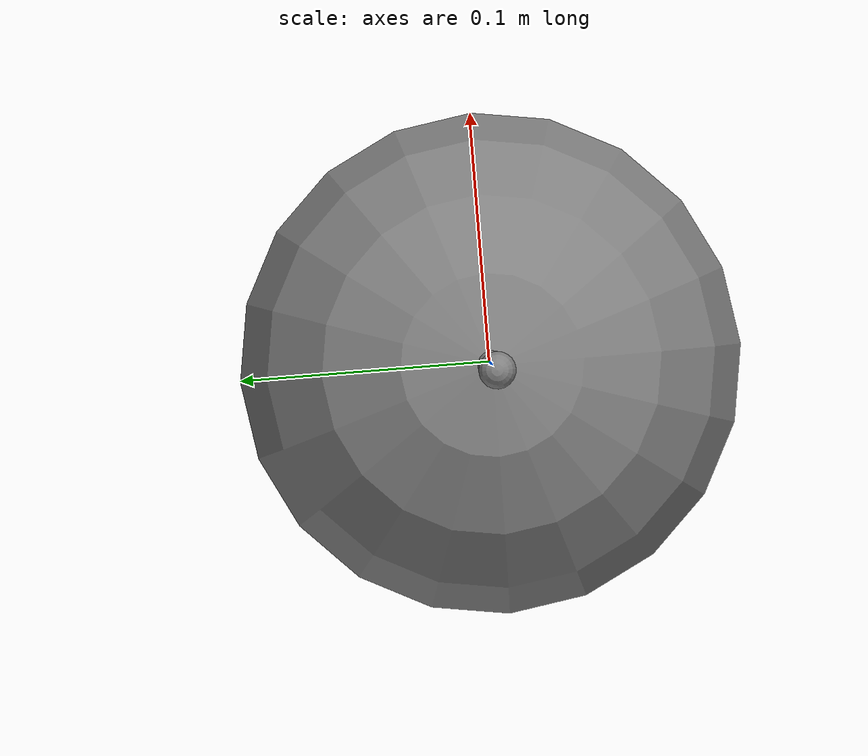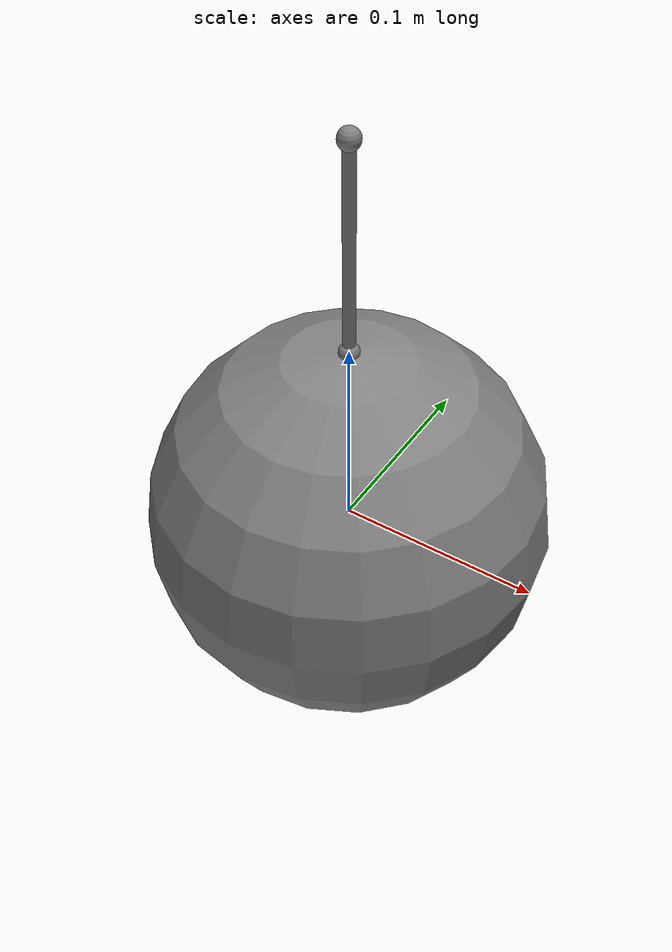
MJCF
<mujoco>
  <worldbody>
    <site name="siteworld"/>
    <body>
      <joint name="jnt0" type="slide" axis="1 0 0"/>
      <geom type="sphere" size="0.1"/>
      <site name="site0" pos="0 0 .1"/>
      <body>
        <joint name="jnt1" type="slide" axis="1 0 0"/>
        <joint name="jnt2" type="hinge" axis="0 1 0"/>
        <geom type="sphere" size="0.1"/>
        <site name="site1" pos="0 0 .2"/>
      </body>
    </body>
  </worldbody>
  <tendon>
    <fixed name="fixed">
      <joint joint="jnt0" coef=".1"/>
      <joint joint="jnt1" coef=".2"/>
      <joint joint="jnt2" coef=".3"/>
    </fixed>
    <spatial name="spatial">
      <pulley divisor="2"/>
      <site site="siteworld"/>
      <site site="site0"/>
      <site site="site1"/>
    </spatial>
  </tendon>
  <actuator>
    <motor tendon="fixed"/>
    <motor tendon="spatial"/>
  </actuator>
  <keyframe>
    <key qpos=".25 .5 .75"/>
  </keyframe>
</mujoco>
